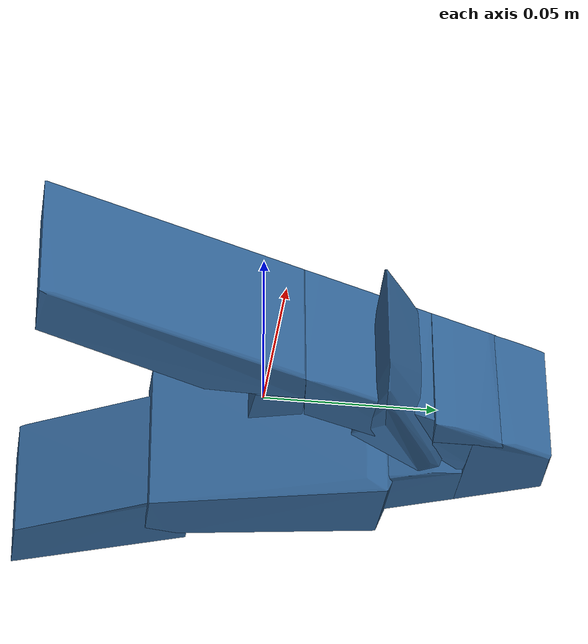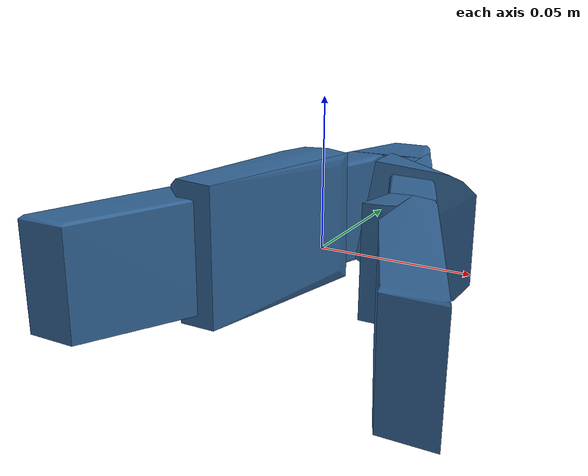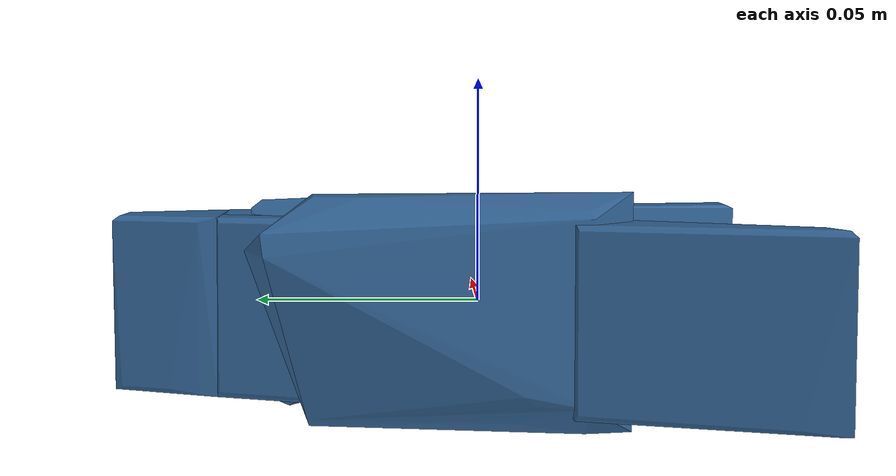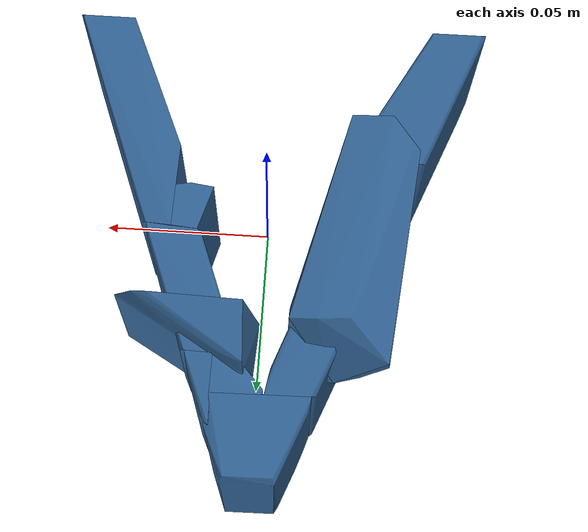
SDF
<?xml version='1.0' encoding='UTF-8'?>
<!-- This SDF was autogenerated by obj_to_drake_sdf.py -->
<sdf version="1.7">
  <model name="A_shape">
    <link name="A_shape">
      <inertial>
        <pose>0 0 0 0 0 0</pose>
        <mass>0.05</mass>
        <inertia>
          <ixx>8.1518702e-05</ixx>
          <iyy>5.8253042e-05</iyy>
          <izz>0.00012665386</izz>
          <ixy>3.1575243e-07</ixy>
          <ixz>-3.5979168e-12</ixz>
          <iyz>-5.9460613e-13</iyz>
        </inertia>
      </inertial>
      <visual name="convex_0">
        <pose>0 0 0 0 0 0</pose>
        <geometry>
          <mesh>
            <uri>A_shape_convex_0.obj</uri>
          </mesh>
        </geometry>
        <material>
          <diffuse>0.19607843137254902 0.39215686274509803 0.5882352941176471 1</diffuse>
        </material>
      </visual>
      <collision name="convex_0_volume">
        <pose>0 0 0 0 0 0</pose>
        <geometry>
          <mesh>
            <uri>A_shape_convex_0.obj</uri>
          </mesh>
        </geometry>
        <drake:proximity_properties xmlns:drake="uri:drake">
          <drake:compliant_hydroelastic/>
          <drake:hydroelastic_modulus> 3.0e7 </drake:hydroelastic_modulus>
          <drake:mesh_resolution_hint> 0.02 </drake:mesh_resolution_hint>
          <drake:hunt_crossley_dissipation>10</drake:hunt_crossley_dissipation>
          <drake:mu_dynamic>0.3</drake:mu_dynamic>
        </drake:proximity_properties>
      </collision>
      <visual name="convex_1">
        <pose>0 0 0 0 0 0</pose>
        <geometry>
          <mesh>
            <uri>A_shape_convex_1.obj</uri>
          </mesh>
        </geometry>
        <material>
          <diffuse>0.19607843137254902 0.39215686274509803 0.5882352941176471 1</diffuse>
        </material>
      </visual>
      <collision name="convex_1_volume">
        <pose>0 0 0 0 0 0</pose>
        <geometry>
          <mesh>
            <uri>A_shape_convex_1.obj</uri>
          </mesh>
        </geometry>
        <drake:proximity_properties xmlns:drake="uri:drake">
          <drake:compliant_hydroelastic/>
          <drake:hydroelastic_modulus> 3.0e7 </drake:hydroelastic_modulus>
          <drake:mesh_resolution_hint> 0.02 </drake:mesh_resolution_hint>
          <drake:hunt_crossley_dissipation>10</drake:hunt_crossley_dissipation>
          <drake:mu_dynamic>0.3</drake:mu_dynamic>
        </drake:proximity_properties>
      </collision>
      <visual name="convex_2">
        <pose>0 0 0 0 0 0</pose>
        <geometry>
          <mesh>
            <uri>A_shape_convex_2.obj</uri>
          </mesh>
        </geometry>
        <material>
          <diffuse>0.19607843137254902 0.39215686274509803 0.5882352941176471 1</diffuse>
        </material>
      </visual>
      <collision name="convex_2_volume">
        <pose>0 0 0 0 0 0</pose>
        <geometry>
          <mesh>
            <uri>A_shape_convex_2.obj</uri>
          </mesh>
        </geometry>
        <drake:proximity_properties xmlns:drake="uri:drake">
          <drake:compliant_hydroelastic/>
          <drake:hydroelastic_modulus> 3.0e7 </drake:hydroelastic_modulus>
          <drake:mesh_resolution_hint> 0.02 </drake:mesh_resolution_hint>
          <drake:hunt_crossley_dissipation>10</drake:hunt_crossley_dissipation>
          <drake:mu_dynamic>0.3</drake:mu_dynamic>
        </drake:proximity_properties>
      </collision>
      <visual name="convex_3">
        <pose>0 0 0 0 0 0</pose>
        <geometry>
          <mesh>
            <uri>A_shape_convex_3.obj</uri>
          </mesh>
        </geometry>
        <material>
          <diffuse>0.19607843137254902 0.39215686274509803 0.5882352941176471 1</diffuse>
        </material>
      </visual>
      <collision name="convex_3_volume">
        <pose>0 0 0 0 0 0</pose>
        <geometry>
          <mesh>
            <uri>A_shape_convex_3.obj</uri>
          </mesh>
        </geometry>
        <drake:proximity_properties xmlns:drake="uri:drake">
          <drake:compliant_hydroelastic/>
          <drake:hydroelastic_modulus> 3.0e7 </drake:hydroelastic_modulus>
          <drake:mesh_resolution_hint> 0.02 </drake:mesh_resolution_hint>
          <drake:hunt_crossley_dissipation>10</drake:hunt_crossley_dissipation>
          <drake:mu_dynamic>0.3</drake:mu_dynamic>
        </drake:proximity_properties>
      </collision>
      <visual name="convex_4">
        <pose>0 0 0 0 0 0</pose>
        <geometry>
          <mesh>
            <uri>A_shape_convex_4.obj</uri>
          </mesh>
        </geometry>
        <material>
          <diffuse>0.19607843137254902 0.39215686274509803 0.5882352941176471 1</diffuse>
        </material>
      </visual>
      <collision name="convex_4_volume">
        <pose>0 0 0 0 0 0</pose>
        <geometry>
          <mesh>
            <uri>A_shape_convex_4.obj</uri>
          </mesh>
        </geometry>
        <drake:proximity_properties xmlns:drake="uri:drake">
          <drake:compliant_hydroelastic/>
          <drake:hydroelastic_modulus> 3.0e7 </drake:hydroelastic_modulus>
          <drake:mesh_resolution_hint> 0.02 </drake:mesh_resolution_hint>
          <drake:hunt_crossley_dissipation>10</drake:hunt_crossley_dissipation>
          <drake:mu_dynamic>0.3</drake:mu_dynamic>
        </drake:proximity_properties>
      </collision>
      <visual name="convex_5">
        <pose>0 0 0 0 0 0</pose>
        <geometry>
          <mesh>
            <uri>A_shape_convex_5.obj</uri>
          </mesh>
        </geometry>
        <material>
          <diffuse>0.19607843137254902 0.39215686274509803 0.5882352941176471 1</diffuse>
        </material>
      </visual>
      <collision name="convex_5_volume">
        <pose>0 0 0 0 0 0</pose>
        <geometry>
          <mesh>
            <uri>A_shape_convex_5.obj</uri>
          </mesh>
        </geometry>
        <drake:proximity_properties xmlns:drake="uri:drake">
          <drake:compliant_hydroelastic/>
          <drake:hydroelastic_modulus> 3.0e7 </drake:hydroelastic_modulus>
          <drake:mesh_resolution_hint> 0.02 </drake:mesh_resolution_hint>
          <drake:hunt_crossley_dissipation>10</drake:hunt_crossley_dissipation>
          <drake:mu_dynamic>0.3</drake:mu_dynamic>
        </drake:proximity_properties>
      </collision>
      <visual name="convex_6">
        <pose>0 0 0 0 0 0</pose>
        <geometry>
          <mesh>
            <uri>A_shape_convex_6.obj</uri>
          </mesh>
        </geometry>
        <material>
          <diffuse>0.19607843137254902 0.39215686274509803 0.5882352941176471 1</diffuse>
        </material>
      </visual>
      <collision name="convex_6_volume">
        <pose>0 0 0 0 0 0</pose>
        <geometry>
          <mesh>
            <uri>A_shape_convex_6.obj</uri>
          </mesh>
        </geometry>
        <drake:proximity_properties xmlns:drake="uri:drake">
          <drake:compliant_hydroelastic/>
          <drake:hydroelastic_modulus> 3.0e7 </drake:hydroelastic_modulus>
          <drake:mesh_resolution_hint> 0.02 </drake:mesh_resolution_hint>
          <drake:hunt_crossley_dissipation>10</drake:hunt_crossley_dissipation>
          <drake:mu_dynamic>0.3</drake:mu_dynamic>
        </drake:proximity_properties>
      </collision>
      <visual name="convex_7">
        <pose>0 0 0 0 0 0</pose>
        <geometry>
          <mesh>
            <uri>A_shape_convex_7.obj</uri>
          </mesh>
        </geometry>
        <material>
          <diffuse>0.19607843137254902 0.39215686274509803 0.5882352941176471 1</diffuse>
        </material>
      </visual>
      <collision name="convex_7_volume">
        <pose>0 0 0 0 0 0</pose>
        <geometry>
          <mesh>
            <uri>A_shape_convex_7.obj</uri>
          </mesh>
        </geometry>
        <drake:proximity_properties xmlns:drake="uri:drake">
          <drake:compliant_hydroelastic/>
          <drake:hydroelastic_modulus> 3.0e7 </drake:hydroelastic_modulus>
          <drake:mesh_resolution_hint> 0.02 </drake:mesh_resolution_hint>
          <drake:hunt_crossley_dissipation>10</drake:hunt_crossley_dissipation>
          <drake:mu_dynamic>0.3</drake:mu_dynamic>
        </drake:proximity_properties>
      </collision>
      <visual name="convex_8">
        <pose>0 0 0 0 0 0</pose>
        <geometry>
          <mesh>
            <uri>A_shape_convex_8.obj</uri>
          </mesh>
        </geometry>
        <material>
          <diffuse>0.19607843137254902 0.39215686274509803 0.5882352941176471 1</diffuse>
        </material>
      </visual>
      <collision name="convex_8_volume">
        <pose>0 0 0 0 0 0</pose>
        <geometry>
          <mesh>
            <uri>A_shape_convex_8.obj</uri>
          </mesh>
        </geometry>
        <drake:proximity_properties xmlns:drake="uri:drake">
          <drake:compliant_hydroelastic/>
          <drake:hydroelastic_modulus> 3.0e7 </drake:hydroelastic_modulus>
          <drake:mesh_resolution_hint> 0.02 </drake:mesh_resolution_hint>
          <drake:hunt_crossley_dissipation>10</drake:hunt_crossley_dissipation>
          <drake:mu_dynamic>0.3</drake:mu_dynamic>
        </drake:proximity_properties>
      </collision>
      <visual name="convex_9">
        <pose>0 0 0 0 0 0</pose>
        <geometry>
          <mesh>
            <uri>A_shape_convex_9.obj</uri>
          </mesh>
        </geometry>
        <material>
          <diffuse>0.19607843137254902 0.39215686274509803 0.5882352941176471 1</diffuse>
        </material>
      </visual>
      <collision name="convex_9_volume">
        <pose>0 0 0 0 0 0</pose>
        <geometry>
          <mesh>
            <uri>A_shape_convex_9.obj</uri>
          </mesh>
        </geometry>
        <drake:proximity_properties xmlns:drake="uri:drake">
          <drake:compliant_hydroelastic/>
          <drake:hydroelastic_modulus> 3.0e7 </drake:hydroelastic_modulus>
          <drake:mesh_resolution_hint> 0.02 </drake:mesh_resolution_hint>
          <drake:hunt_crossley_dissipation>10</drake:hunt_crossley_dissipation>
          <drake:mu_dynamic>0.3</drake:mu_dynamic>
        </drake:proximity_properties>
      </collision>
    </link>
    <link name="A_shape_base"/>
    <link name="fake_x"/>
    <link name="fake_y"/>
    <link name="fake_z"/>
    <joint name="base_to_x" type="prismatic">
      <parent>A_shape_base</parent>
      <child>fake_x</child>
      <axis>
        <xyz>1 0 0</xyz>
        <limit>
          <lower>-1.79769e+308</lower>
          <upper>1.79769e+308</upper>
        </limit>
      </axis>
    </joint>
    <joint name="x_to_y" type="prismatic">
      <parent>fake_x</parent>
      <child>fake_y</child>
      <axis>
        <xyz>0 1 0</xyz>
        <limit>
          <lower>-1.79769e+308</lower>
          <upper>1.79769e+308</upper>
        </limit>
      </axis>
    </joint>
    <joint name="y_to_z" type="prismatic">
      <parent>fake_y</parent>
      <child>fake_z</child>
      <axis>
        <xyz>0 0 1</xyz>
        <limit>
          <lower>-1.79769e+308</lower>
          <upper>1.79769e+308</upper>
        </limit>
      </axis>
    </joint>
    <joint name="z_to_rot" type="continuous">
      <parent>fake_z</parent>
      <child>A_shape</child>
      <axis>
        <xyz>0 0 1</xyz>
      </axis>
    </joint>
  </model>
</sdf>
